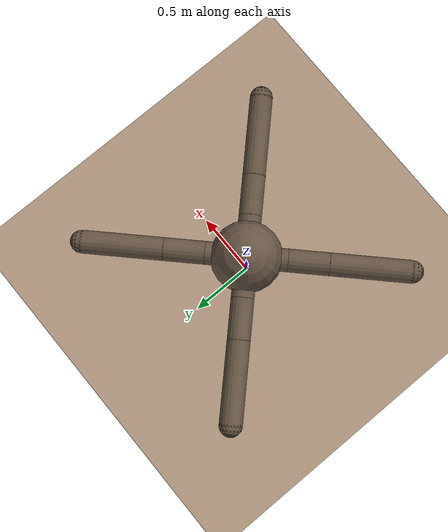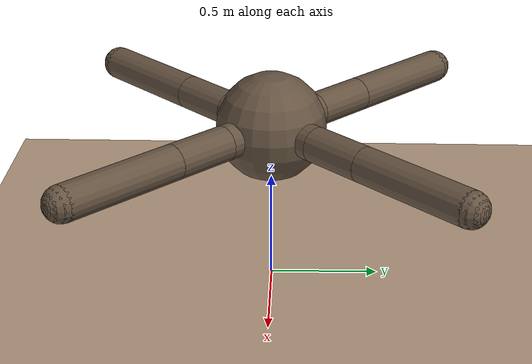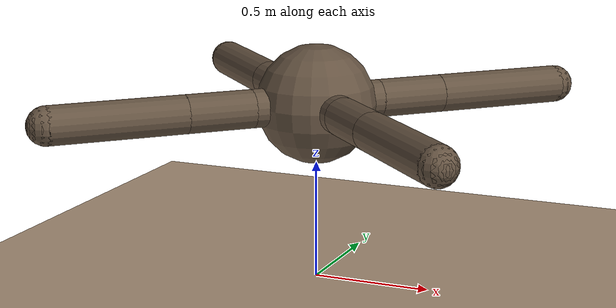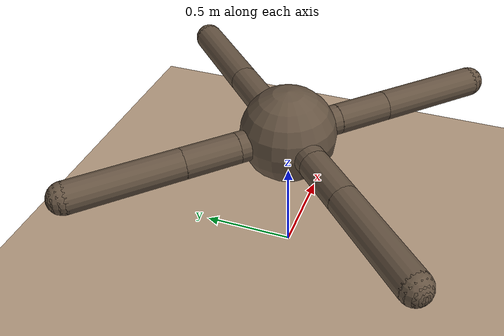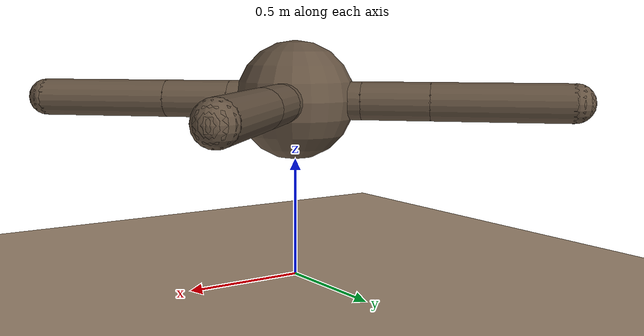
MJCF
<mujoco model="ant">
  <compiler angle="degree" coordinate="local" inertiafromgeom="true"/>
  <option timestep="0.01" iterations="4" ls_iterations="6"/>
  <custom>
    <!-- brax custom params -->
    <numeric data="0.0 0.0 0.55 1.0 0.0 0.0 0.0 0.0 1.0 0.0 -1.0 0.0 -1.0 0.0 1.0" name="init_qpos"/>
    <numeric data="1000" name="constraint_limit_stiffness"/>
    <numeric data="4000" name="constraint_stiffness"/>
    <numeric data="10" name="constraint_ang_damping"/>
    <numeric data="20" name="constraint_vel_damping"/>
    <numeric data="0.5" name="joint_scale_pos"/>
    <numeric data="0.2" name="joint_scale_ang"/>
    <numeric data="0.0" name="ang_damping"/>
    <numeric data="1" name="spring_mass_scale"/>
    <numeric data="1" name="spring_inertia_scale"/>
    <numeric data="15" name="solver_maxls"/>
  </custom>
  <default>
    <joint armature="1" damping="1" limited="true"/>
    <geom contype="0" conaffinity="0" condim="3" density="5.0" friction="1 0.5 0.5"
     rgba="0.4 0.33 0.26 1.0"/>
    <site size="0.032" type="sphere"/>
  </default>
  <asset>
    <texture builtin="gradient" height="100" rgb1=".55 .45 .35" rgb2="0.12 0.10 0.08" type="skybox" width="100"/>
    <texture builtin="flat" height="1278" mark="cross" markrgb="1 1 1" name="texgeom" random="0.01" rgb1="0.8 0.6 0.4" rgb2="0.8 0.6 0.4" type="cube" width="127"/>
    <texture builtin="checker" height="100" name="texplane" rgb1="0.72 0.62 0.52" rgb2="0.66 0.56 0.46" type="2d" width="100"/>
    <material name="MatPlane" reflectance="0.15" shininess="0.1" specular="0.1" texrepeat="60 60" texture="texplane"/>
    <material name="geom" texture="texgeom" texuniform="true"/>
  </asset>
  <worldbody>
    <light cutoff="100" diffuse="1 1 1" dir="-0 0 -1.3" directional="true" exponent="1" pos="0 0 1.3" specular=".1 .1 .1"/>
    <geom conaffinity="1" condim="3" material="MatPlane" name="floor" pos="0 0 0" size="40 40 40" type="plane" rgba="0.5 0.5 0.5 1.0"/>

  <camera name="fixedfar" pos="0 -4 2" zaxis="0 -1 0.5" mode="trackcom"/>
  <body name="torso" pos="0 0 0.75">
      <site name="torso" rgba="1 0 0 .1"/>
      <camera name="track" mode="trackcom" pos="0 -3 0.3" xyaxes="1 0 0 0 0 1"/>
      <camera name="vision" pos="0 0 .15" xyaxes="0 -1 0 .4 0 1" fovy="90"/>
      <geom name="torso_geom" pos="0 0 0" size="0.25" type="sphere"/>
      <joint armature="0" damping="0" limited="false" margin="0.01" name="root" pos="0 0 0" type="free"/>
      <body name="front_left_leg" pos="0 0 0">
        <geom fromto="0.0 0.0 0.0 0.2 0.2 0.0" name="aux_1_geom" size="0.08" type="capsule"/>
        <body name="aux_1" pos="0.2 0.2 0">
          <joint axis="0 0 1" name="hip_1" pos="0.0 0.0 0.0" range="-30 30" type="hinge"/>
          <geom fromto="0.0 0.0 0.0 0.2 0.2 0.0" name="left_leg_geom" size="0.08" type="capsule"/>
          <body pos="0.2 0.2 0">
            <joint axis="-1 1 0" name="ankle_1" pos="0.0 0.0 0.0" range="30 70" type="hinge"/>
            <geom fromto="0.0 0.0 0.0 0.4 0.4 0.0" name="left_ankle_geom" size="0.08" type="capsule"/>
            <geom name="left_foot_geom" contype="1" pos="0.4 0.4 0" size="0.08" type="sphere" mass="0"/>
          </body>
        </body>
      </body>
      <body name="front_right_leg" pos="0 0 0">
        <geom fromto="0.0 0.0 0.0 -0.2 0.2 0.0" name="aux_2_geom" size="0.08" type="capsule"/>
        <body name="aux_2" pos="-0.2 0.2 0">
          <joint axis="0 0 1" name="hip_2" pos="0.0 0.0 0.0" range="-30 30" type="hinge"/>
          <geom fromto="0.0 0.0 0.0 -0.2 0.2 0.0" name="right_leg_geom" size="0.08" type="capsule"/>
          <body pos="-0.2 0.2 0">
            <joint axis="1 1 0" name="ankle_2" pos="0.0 0.0 0.0" range="-70 -30" type="hinge"/>
            <geom fromto="0.0 0.0 0.0 -0.4 0.4 0.0" name="right_ankle_geom" size="0.08" type="capsule"/>
            <geom name="right_foot_geom" contype="1" pos="-0.4 0.4 0" size="0.08" type="sphere" mass="0"/>
          </body>
        </body>
      </body>
      <body name="back_leg" pos="0 0 0">
        <geom fromto="0.0 0.0 0.0 -0.2 -0.2 0.0" name="aux_3_geom" size="0.08" type="capsule"/>
        <body name="aux_3" pos="-0.2 -0.2 0">
          <joint axis="0 0 1" name="hip_3" pos="0.0 0.0 0.0" range="-30 30" type="hinge"/>
          <geom fromto="0.0 0.0 0.0 -0.2 -0.2 0.0" name="back_leg_geom" size="0.08" type="capsule"/>
          <body pos="-0.2 -0.2 0">
            <joint axis="-1 1 0" name="ankle_3" pos="0.0 0.0 0.0" range="-70 -30" type="hinge"/>
            <geom fromto="0.0 0.0 0.0 -0.4 -0.4 0.0" name="third_ankle_geom" size="0.08" type="capsule"/>
            <geom name="third_foot_geom" contype="1" pos="-0.4 -0.4 0" size="0.08" type="sphere" mass="0"/>
          </body>
        </body>
      </body>
      <body name="right_back_leg" pos="0 0 0">
        <geom fromto="0.0 0.0 0.0 0.2 -0.2 0.0" name="aux_4_geom" size="0.08" type="capsule"/>
        <body name="aux_4" pos="0.2 -0.2 0">
          <joint axis="0 0 1" name="hip_4" pos="0.0 0.0 0.0" range="-30 30" type="hinge"/>
          <geom fromto="0.0 0.0 0.0 0.2 -0.2 0.0" name="rightback_leg_geom" size="0.08" type="capsule"/>
          <body pos="0.2 -0.2 0">
            <joint axis="1 1 0" name="ankle_4" pos="0.0 0.0 0.0" range="30 70" type="hinge"/>
            <geom fromto="0.0 0.0 0.0 0.4 -0.4 0.0" name="fourth_ankle_geom" size="0.08" type="capsule"/>
            <geom name="fourth_foot_geom" contype="1" pos="0.4 -0.4 0" size="0.08" type="sphere" mass="0"/>
          </body>
        </body>
      </body>
    </body>
  </worldbody>
  <sensor>
    <!-- Used for observation -->
    <accelerometer site="torso" name="accelerometer"/>
    <velocimeter site="torso" name="velocimeter"/>
    <gyro site="torso" name="gyro"/>
    <magnetometer site="torso" name="magnetometer"/>

    <!-- Used for intrinsic constraints -->
    <subtreecom body="torso" name="subtreecom"/>
    <subtreelinvel body="torso" name="subtreelinvel"/>
    <subtreeangmom body="torso" name="subtreeangmom"/>
  </sensor>
  <actuator>
    <motor ctrllimited="true" ctrlrange="-1.0 1.0" joint="hip_4" gear="150"/>
    <motor ctrllimited="true" ctrlrange="-1.0 1.0" joint="ankle_4" gear="150"/>
    <motor ctrllimited="true" ctrlrange="-1.0 1.0" joint="hip_1" gear="150"/>
    <motor ctrllimited="true" ctrlrange="-1.0 1.0" joint="ankle_1" gear="150"/>
    <motor ctrllimited="true" ctrlrange="-1.0 1.0" joint="hip_2" gear="150"/>
    <motor ctrllimited="true" ctrlrange="-1.0 1.0" joint="ankle_2" gear="150"/>
    <motor ctrllimited="true" ctrlrange="-1.0 1.0" joint="hip_3" gear="150"/>
    <motor ctrllimited="true" ctrlrange="-1.0 1.0" joint="ankle_3" gear="150"/>
  </actuator>
</mujoco>
